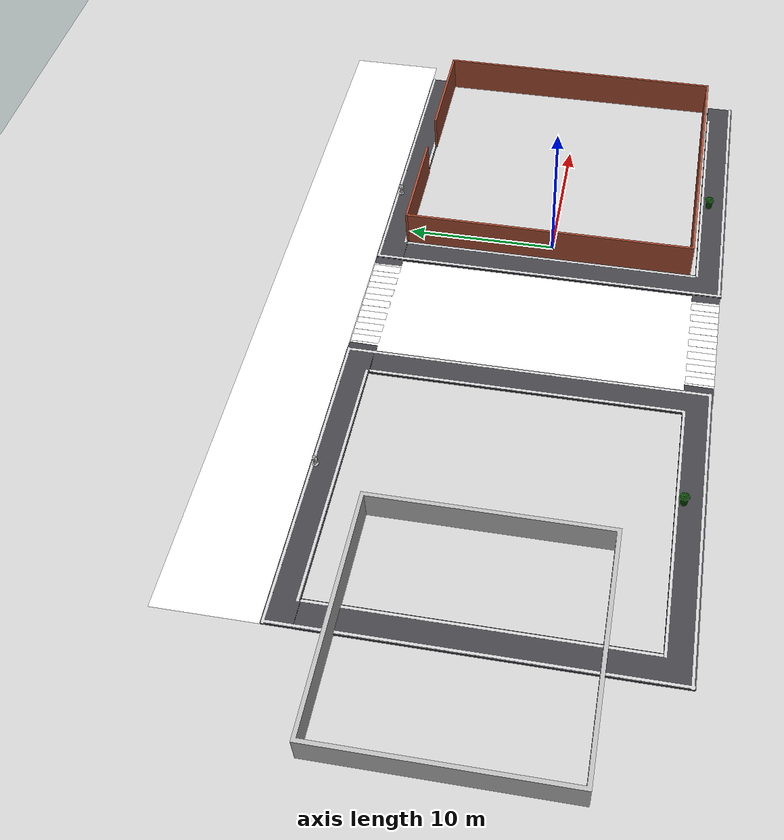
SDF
<sdf version="1.4">
 <world name="default">
  <light type="directional" name="sun">
   <pose>0.0 0.0 1000 -0.35 -0.5 0</pose>
   <diffuse>0.8 0.8 0.8 1</diffuse>
   <specular>0.2 0.2 0.2 1</specular>
   <attenuation>
    <range>1000</range>
    <constant>0.9</constant>
    <linear>0.01</linear>
    <quadratic>0.001</quadratic>
   </attenuation>
   <direction>-0.5 0.1 -0.9</direction>
  </light>
  <model name="ground_plane">
   <static>true</static>
   <link name="link">
    <collision name="collision">
     <geometry><plane><normal>0 0 1</normal><size>100 100</size></plane></geometry>
     <surface><friction><ode><mu>100</mu><mu2>50</mu2></ode></friction></surface>
    </collision>
    <visual name="visual">
     <cast_shadows>false</cast_shadows>
     <geometry><plane><normal>0 0 1</normal><size>100 100</size></plane></geometry>
     <material>
      <script><uri>file://media/materials/scripts/gazebo.material</uri><name>Gazebo/Tertiary</name></script>
     </material>
    </visual>
   </link>
  </model>
  <include><uri>model://road</uri><pose>-30.43 0.01 0 0 0 0</pose></include>
  <include><uri>model://sidewalk</uri><pose>-30.4 0 0 0 0 0</pose></include>
  <include><uri>model://building</uri><pose>-30.74 0.499 0 0 0 0</pose></include>
  <include><name>fire_hydrant1</name><uri>model://fire_hydrant</uri><pose>3.66 11.53 0 0 0 0</pose></include>
  <include><name>fire_hydrant2</name><uri>model://fire_hydrant</uri><pose>-20.56 11.56 0 0 0 0</pose></include>
  <include>
   <name>trash_can1</name>
   <uri>model://first_2015_trash_can</uri>
   <pose>-19.729 -10.384 0.138 0 0 0.025</pose>
  </include>
  <include>
   <name>trash_can2</name>
   <uri>model://first_2015_trash_can</uri>
   <pose>5.845 -10.48 0.138 0 0 0.025</pose>
  </include>
  <include><uri>model://park_fence</uri><pose>7.86 0.25 0 0 0 0</pose></include>
  <physics type="ode">
   <max_step_size>0.004</max_step_size>
   <real_time_factor>1</real_time_factor>
   <real_time_update_rate>250</real_time_update_rate>
   <gravity>0 0 -9.8</gravity>
  </physics>
  <scene>
   <ambient>0.9 0.9 0.9 1</ambient>
   <sky><clouds><speed>8</speed></clouds></sky>
   <background>0.7 0.7 0.7 1</background>
   <shadows>1</shadows>
  </scene>
 </world>
</sdf>

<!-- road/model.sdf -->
<sdf version="1.5">
<model name="road">
  <static>true</static>
  <link name="road_link">

  <visual name="road">
    <pose>0 0 0 0 0 0</pose>
    <geometry>
      <mesh><uri>model://road/meshes/road.dae</uri><scale>1 1 1</scale></mesh>
    </geometry>
  </visual>

  <collision name="road">
    <pose>0 0 0 0 0 0</pose>
    <geometry>
      <mesh><uri>model://road/meshes/road.dae</uri><scale>1 1 1</scale></mesh>
    </geometry>
  </collision>

  </link>
</model>
</sdf>

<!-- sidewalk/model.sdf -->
<sdf version="1.5">
<model name="sidewalk">
  <static>true</static>
  <link name="sidewalk_link">

  <visual name="sidewalk">
    <pose>0 0 0 0 0 0</pose>
    <geometry>
      <mesh><uri>model://sidewalk/meshes/sidewalk.dae</uri><scale>1 1 1</scale></mesh>
    </geometry>
  </visual>

  <collision name="sidewalk">
    <pose>0 0 0 0 0 0</pose>
    <geometry>
      <mesh><uri>model://sidewalk/meshes/sidewalk.dae</uri><scale>1 1 1</scale></mesh>
    </geometry>
  </collision>

  </link>
</model>
</sdf>

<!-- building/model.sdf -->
<sdf version="1.5">
<model name="building">
  <static>true</static>
  <link name="building_link">

  <visual name="building">
    <pose>0 0 0 0 0 0</pose>
    <geometry>
      <mesh><uri>model://building/meshes/building.dae</uri><scale>1 1 1</scale></mesh>
    </geometry>
  </visual>

  <collision name="building">
    <pose>0 0 0 0 0 0</pose>
    <geometry>
      <mesh><uri>model://building/meshes/building.dae</uri><scale>1 1 1</scale></mesh>
    </geometry>
  </collision>

  </link>
</model>
</sdf>

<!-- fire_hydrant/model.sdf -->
<sdf version="1.5">
  <model name="fire_hydrant">
    <static>true</static>
    <link name="link">
      <collision name="collision">
        <geometry>
          <mesh>
            <uri>file://isr-testbed/fire_hydrant/meshes/fire_hydrant.dae</uri>
          </mesh>
        </geometry>
      </collision>
      <visual name="visual">
        <geometry>
          <mesh>
            <uri>file://isr-testbed/fire_hydrant/meshes/fire_hydrant.dae</uri>
          </mesh>
        </geometry>
      </visual>
    </link>
  </model>
</sdf>

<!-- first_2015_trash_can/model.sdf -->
<sdf version="1.5">
  <model name="first_2015_trash_can">
    <link name="link">
      <inertial>
        <pose>0 0 0.3683 0 0 0</pose>
        <mass>4.83076</mass>
        <inertia>
          <ixx>0.281534052</ixx>
          <ixy>0</ixy>
          <ixz>0</ixz>
          <iyy>0.281534052</iyy>
          <iyz>0</iyz>
          <izz>0.126222831</izz>
        </inertia>
      </inertial>

      <visual name="visual">
        <geometry>
          <mesh>
            <uri>model://first_2015_trash_can/meshes/trash_can.dae</uri>
          </mesh>
        </geometry>
      </visual>

      <collision name="collision">
        <geometry>
          <mesh>
            <uri>model://first_2015_trash_can/meshes/trash_can.dae</uri>
          </mesh>
        </geometry>
      </collision>
    </link>
  </model>
</sdf>

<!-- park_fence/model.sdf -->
<sdf version='1.6'>
  <model name='Untitled'>
    <pose frame=''>38.5061 -0.005097 0 0 -0 0</pose>
    <link name='Wall_10'>
      <collision name='Wall_10_Collision'>
        <geometry>
          <box>
            <size>17.75 0.15 2.5</size>
          </box>
        </geometry>
        <pose frame=''>0 0 1.25 0 -0 0</pose>
      </collision>
      <visual name='Wall_10_Visual'>
        <pose frame=''>0 0 1.25 0 -0 0</pose>
        <geometry>
          <box>
            <size>17.75 0.15 2.5</size>
          </box>
        </geometry>
        <material>
          <script>
            <uri>file://media/materials/scripts/gazebo.material</uri>
            <name>Gazebo/Bricks</name>
          </script>
          <ambient>1 1 1 1</ambient>
        </material>
        <meta>
          <layer>0</layer>
        </meta>
      </visual>
      <pose frame=''>1e-06 -9.8 0 0 -0 0</pose>
    </link>
    <link name='Wall_11'>
      <collision name='Wall_11_Collision'>
        <geometry>
          <box>
            <size>19.75 0.15 2.5</size>
          </box>
        </geometry>
        <pose frame=''>0 0 1.25 0 -0 0</pose>
      </collision>
      <visual name='Wall_11_Visual'>
        <pose frame=''>0 0 1.25 0 -0 0</pose>
        <geometry>
          <box>
            <size>19.75 0.15 2.5</size>
          </box>
        </geometry>
        <material>
          <script>
            <uri>file://media/materials/scripts/gazebo.material</uri>
            <name>Gazebo/Bricks</name>
          </script>
          <ambient>1 1 1 1</ambient>
        </material>
        <meta>
          <layer>0</layer>
        </meta>
      </visual>
      <pose frame=''>8.8 0 0 0 -0 1.5708</pose>
    </link>
    <link name='Wall_13'>
      <collision name='Wall_13_Collision'>
        <geometry>
          <box>
            <size>7.25 0.15 2.5</size>
          </box>
        </geometry>
        <pose frame=''>0 0 1.25 0 -0 0</pose>
      </collision>
      <visual name='Wall_13_Visual'>
        <pose frame=''>0 0 1.25 0 -0 0</pose>
        <geometry>
          <box>
            <size>7.25 0.15 2.5</size>
          </box>
        </geometry>
        <material>
          <script>
            <uri>file://media/materials/scripts/gazebo.material</uri>
            <name>Gazebo/Bricks</name>
          </script>
          <ambient>1 1 1 1</ambient>
        </material>
        <meta>
          <layer>0</layer>
        </meta>
      </visual>
      <pose frame=''>-5.25 9.8 0 0 -0 0</pose>
    </link>
    <link name='Wall_16'>
      <collision name='Wall_16_Collision'>
        <geometry>
          <box>
            <size>7.5 0.15 2.5</size>
          </box>
        </geometry>
        <pose frame=''>0 0 1.25 0 -0 0</pose>
      </collision>
      <visual name='Wall_16_Visual'>
        <pose frame=''>0 0 1.25 0 -0 0</pose>
        <geometry>
          <box>
            <size>7.5 0.15 2.5</size>
          </box>
        </geometry>
        <material>
          <script>
            <uri>file://media/materials/scripts/gazebo.material</uri>
            <name>Gazebo/Bricks</name>
          </script>
          <ambient>1 1 1 1</ambient>
        </material>
        <meta>
          <layer>0</layer>
        </meta>
      </visual>
      <pose frame=''>5.125 9.8 0 0 -0 3.14159</pose>
    </link>
    <link name='Wall_9'>
      <collision name='Wall_9_Collision'>
        <geometry>
          <box>
            <size>19.75 0.15 2.5</size>
          </box>
        </geometry>
        <pose frame=''>0 0 1.25 0 -0 0</pose>
      </collision>
      <visual name='Wall_9_Visual'>
        <pose frame=''>0 0 1.25 0 -0 0</pose>
        <geometry>
          <box>
            <size>19.75 0.15 2.5</size>
          </box>
        </geometry>
        <material>
          <script>
            <uri>file://media/materials/scripts/gazebo.material</uri>
            <name>Gazebo/Bricks</name>
          </script>
          <ambient>1 1 1 1</ambient>
        </material>
        <meta>
          <layer>0</layer>
        </meta>
      </visual>
      <pose frame=''>-8.8 0 0 0 -0 -1.5708</pose>
    </link>
    <static>1</static>
  </model>
</sdf>
